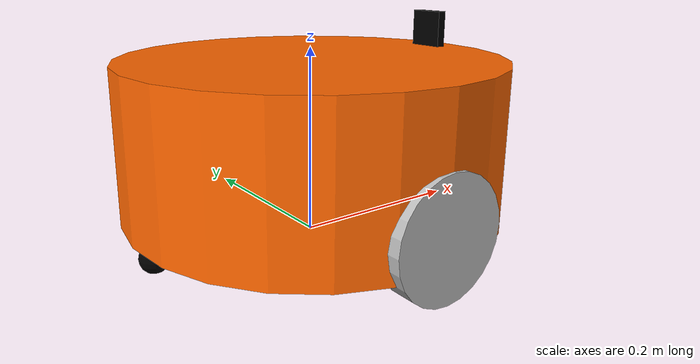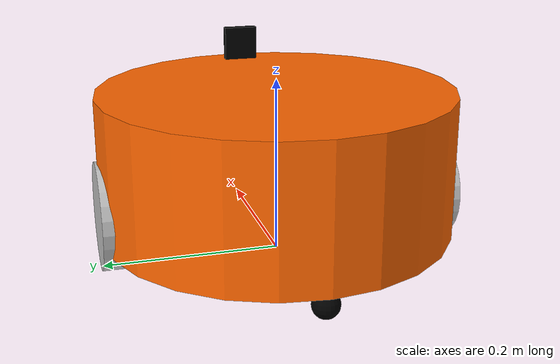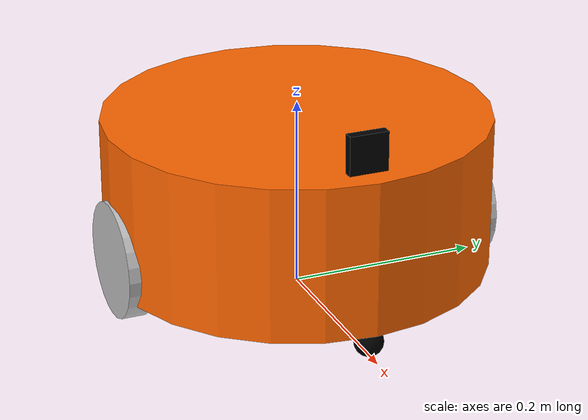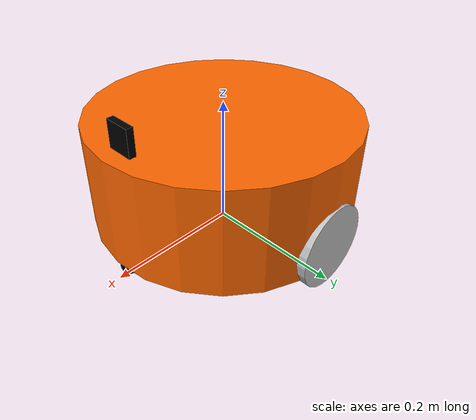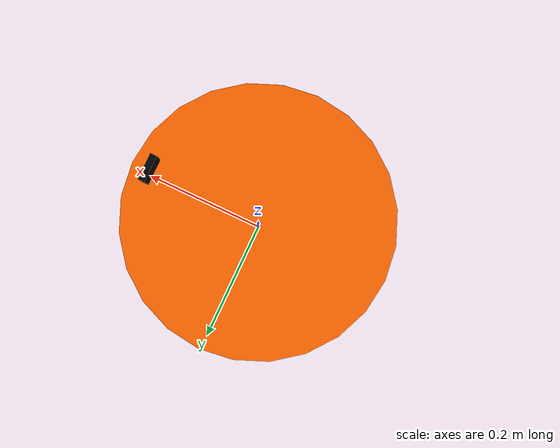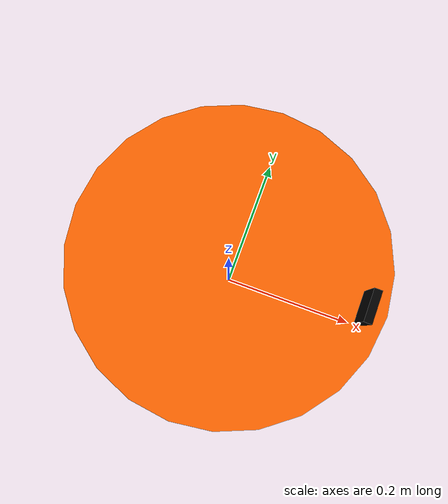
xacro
<?xml version="1.0"?>
<robot name="arm" xmlns:xacro="http://www.ros.org/wiki/xacro">

    <!-- 加载其它的xacro文件 -->
    <xacro:include filename="$(find mbot_description)/urdf/xacro/mbot_base.xacro" />
    <xacro:include filename="$(find mbot_description)/urdf/xacro/sensors/camera.xacro" />

    <!-- 常量定义 -->
    <xacro:property name="camera_offset_x" value="0.17" />
    <xacro:property name="camera_offset_y" value="0" />
    <xacro:property name="camera_offset_z" value="0.10" />

    <!-- 调用宏定义,因为后面用到了base_link-->
    <mbot_base/>

    <!-- Camera -->
    <joint name="camera_joint" type="fixed">
        <origin xyz="${camera_offset_x} ${camera_offset_y} ${camera_offset_z}" rpy="0 0 0" />
        <parent link="base_link"/>
        <child link="camera_link"/>
    </joint>

    <xacro:usb_camera prefix="camera"/>

</robot>

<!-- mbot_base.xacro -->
<robot name="mbot" xmlns:xacro="http://www.ros.org/wiki/xacro">

    <!-- PROPERTY LIST --><!-- 常量的定义 -->
    <xacro:property name="M_PI" value="3.1415926"/>
    <xacro:property name="base_radius" value="0.20"/>
    <xacro:property name="base_length" value="0.16"/>

    <xacro:property name="wheel_radius" value="0.06"/>
    <xacro:property name="wheel_length" value="0.025"/>
    <xacro:property name="wheel_joint_y" value="0.19"/>
    <xacro:property name="wheel_joint_z" value="0.05"/>

    <xacro:property name="caster_radius" value="0.015"/> <!-- wheel_radius - ( base_length/2 - wheel_joint_z) -->
    <xacro:property name="caster_joint_x" value="0.18"/>

    <!-- 定义一些材料的颜色 -->
    <material name="yellow">
        <color rgba="1 0.4 0 1"/>
    </material>
    <material name="black">
        <color rgba="0 0 0 0.95"/>
    </material>
    <material name="gray">
        <color rgba="0.75 0.75 0.75 1"/>
    </material>

    <!-- 宏定义macro for robot wheel -->
    <xacro:macro name="wheel" params="prefix reflect">      <!-- params:参数A:prefix B:reflect-->
        <joint name="${prefix}_wheel_joint" type="continuous">
            <origin xyz="0 ${reflect*wheel_joint_y} ${-wheel_joint_z}" rpy="0 0 0"/>
            <parent link="base_link"/>
            <child link="${prefix}_wheel_link"/>
            <axis xyz="0 1 0"/>
        </joint>

        <link name="${prefix}_wheel_link">
            <visual>
                <origin xyz="0 0 0" rpy="${M_PI/2} 0 0" />
                <geometry>
                    <cylinder radius="${wheel_radius}" length = "${wheel_length}"/>
                </geometry>
                <material name="gray" />
            </visual>
        </link>
    </xacro:macro>

    <!-- 宏定义macro for robot caster -->
    <xacro:macro name="caster" params="prefix reflect">
        <joint name="${prefix}_caster_joint" type="continuous">
            <origin xyz="${reflect*caster_joint_x} 0 ${-(base_length/2 + caster_radius)}" rpy="0 0 0"/>
            <parent link="base_link"/>
            <child link="${prefix}_caster_link"/>
            <axis xyz="0 1 0"/>
        </joint>

        <link name="${prefix}_caster_link">
            <visual>
                <origin xyz="0 0 0" rpy="0 0 0"/>
                <geometry>
                    <sphere radius="${caster_radius}" />
                </geometry>
                <material name="black" />
            </visual>
        </link>
    </xacro:macro>

    <!-- 定义macro for robot base -->
    <xacro:macro name="mbot_base">
        <link name="base_footprint">
            <visual>
                <origin xyz="0 0 0" rpy="0 0 0" />
                <geometry>
                    <box size="0.001 0.001 0.001" />
                </geometry>
            </visual>
        </link>

        <joint name="base_footprint_joint" type="fixed">
            <origin xyz="0 0 ${base_length/2 + caster_radius*2}" rpy="0 0 0" />
            <parent link="base_footprint"/>
            <child link="base_link" />
        </joint>

        <link name="base_link">
            <visual>
                <origin xyz=" 0 0 0" rpy="0 0 0" />
                <geometry>
                    <cylinder length="${base_length}" radius="${base_radius}"/>
                </geometry>
                <material name="yellow" />
            </visual>
        </link>

        <!-- 调用宏定义,赋值具体参数 -->
        <wheel prefix="left" reflect="-1"/>
        <wheel prefix="right" reflect="1"/>

        <caster prefix="front" reflect="-1"/>
        <caster prefix="back" reflect="1"/>
    </xacro:macro>
</robot>

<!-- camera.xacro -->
<robot name="camera" xmlns:xacro="http://www.ros.org/wiki/xacro" >

    <xacro:macro name="usb_camera" params="prefix:=camera"><!-- 默认参数camera -->
        <link name="${prefix}_link">
            <visual>
                <origin xyz=" 0 0 0 " rpy="0 0 0" />
                <geometry>
                    <box size="0.01 0.04 0.04" />
                </geometry>
                <material name="black"/>
            </visual>
        </link>
    </xacro:macro>

</robot>
